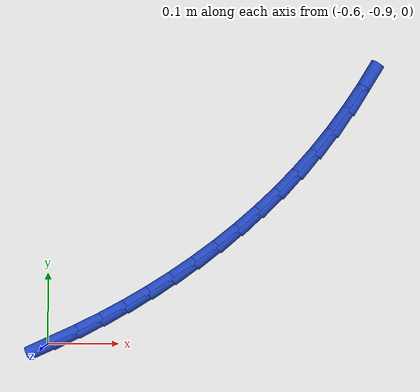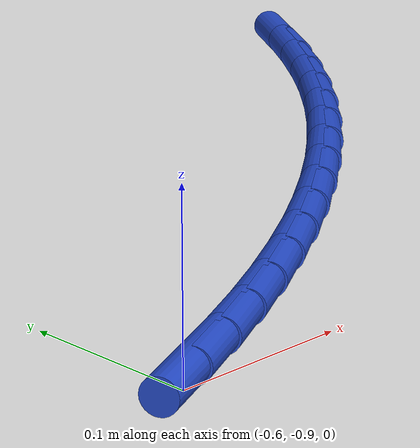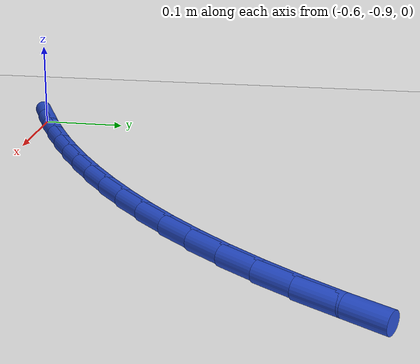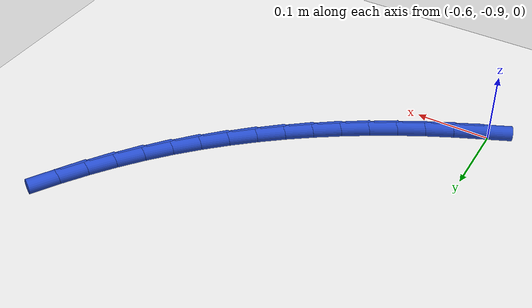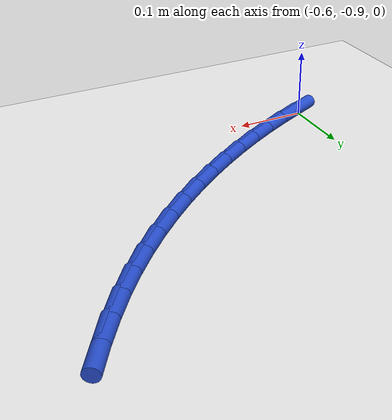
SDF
<sdf version="1.6">
 <world name="default">
  <model name="ground_plane">
   <static>1</static>
   <link name="link">
    <collision name="collision">
     <geometry><plane><normal>0 0 1</normal><size>100 100</size></plane></geometry>
     <surface><friction><ode><mu>100</mu><mu2>50</mu2></ode></friction></surface>
    </collision>
    <visual name="visual">
     <cast_shadows>0</cast_shadows>
     <geometry><plane><normal>0 0 1</normal><size>100 100</size></plane></geometry>
     <material>
      <script><uri>file://media/materials/scripts/gazebo.material</uri><name>Gazebo/WhiteGlow</name></script>
     </material>
    </visual>
   </link>
  </model>
  <model name="line">
   <link name="link_150">
    <pose>-0.5914952265184393 -0.8967577187634599 0.01 0 1.57 0.4288684942451355</pose>
    <collision name="collision">
     <geometry><cylinder><radius>0.01</radius><length>0.08</length></cylinder></geometry>
    </collision>
    <visual name="visual">
     <material>
      <script><name>Gazebo/Blue</name><uri>file://media/materials/scripts/gazebo.material</uri></script>
     </material>
     <geometry><cylinder><radius>0.01</radius><length>0.08</length></cylinder></geometry>
    </visual>
   </link>
   <link name="link_151">
    <pose>-0.557234073786241 -0.8810917301310645 0.01 0 1.57 0.4611441816226867</pose>
    <collision name="collision">
     <geometry><cylinder><radius>0.01</radius><length>0.08</length></cylinder></geometry>
    </collision>
    <visual name="visual">
     <material>
      <script><name>Gazebo/Blue</name><uri>file://media/materials/scripts/gazebo.material</uri></script>
     </material>
     <geometry><cylinder><radius>0.01</radius><length>0.08</length></cylinder></geometry>
    </visual>
   </link>
   <link name="link_152">
    <pose>-0.5233209204410054 -0.8642411449046276 0.01 0 1.57 0.49413402091840103</pose>
    <collision name="collision">
     <geometry><cylinder><radius>0.01</radius><length>0.08</length></cylinder></geometry>
    </collision>
    <visual name="visual">
     <material>
      <script><name>Gazebo/Blue</name><uri>file://media/materials/scripts/gazebo.material</uri></script>
     </material>
     <geometry><cylinder><radius>0.01</radius><length>0.08</length></cylinder></geometry>
    </visual>
   </link>
   <link name="link_153">
    <pose>-0.489851456651081 -0.8462108075921084 0.01 0 1.57 0.5279810407179869</pose>
    <collision name="collision">
     <geometry><cylinder><radius>0.01</radius><length>0.08</length></cylinder></geometry>
    </collision>
    <visual name="visual">
     <material>
      <script><name>Gazebo/Blue</name><uri>file://media/materials/scripts/gazebo.material</uri></script>
     </material>
     <geometry><cylinder><radius>0.01</radius><length>0.08</length></cylinder></geometry>
    </visual>
   </link>
   <link name="link_154">
    <pose>-0.45692153594371276 -0.8270058095265866 0.01 0 1.57 0.5628297081690211</pose>
    <collision name="collision">
     <geometry><cylinder><radius>0.01</radius><length>0.08</length></cylinder></geometry>
    </collision>
    <visual name="visual">
     <material>
      <script><name>Gazebo/Blue</name><uri>file://media/materials/scripts/gazebo.material</uri></script>
     </material>
     <geometry><cylinder><radius>0.01</radius><length>0.08</length></cylinder></geometry>
    </visual>
   </link>
   <link name="link_155">
    <pose>-0.42462701184614815 -0.8066312420411432 0.01 0 1.57 0.5988217457042266</pose>
    <collision name="collision">
     <geometry><cylinder><radius>0.01</radius><length>0.08</length></cylinder></geometry>
    </collision>
    <visual name="visual">
     <material>
      <script><name>Gazebo/Blue</name><uri>file://media/materials/scripts/gazebo.material</uri></script>
     </material>
     <geometry><cylinder><radius>0.01</radius><length>0.08</length></cylinder></geometry>
    </visual>
   </link>
   <link name="link_156">
    <pose>-0.3930637378856324 -0.7850921964688586 0.01 0 1.57 0.6360955608301228</pose>
    <collision name="collision">
     <geometry><cylinder><radius>0.01</radius><length>0.08</length></cylinder></geometry>
    </collision>
    <visual name="visual">
     <material>
      <script><name>Gazebo/Blue</name><uri>file://media/materials/scripts/gazebo.material</uri></script>
     </material>
     <geometry><cylinder><radius>0.01</radius><length>0.08</length></cylinder></geometry>
    </visual>
   </link>
   <link name="link_157">
    <pose>-0.3623275675894113 -0.7623937641428126 0.01 0 1.57 0.6747850621855289</pose>
    <collision name="collision">
     <geometry><cylinder><radius>0.01</radius><length>0.08</length></cylinder></geometry>
    </collision>
    <visual name="visual">
     <material>
      <script><name>Gazebo/Blue</name><uri>file://media/materials/scripts/gazebo.material</uri></script>
     </material>
     <geometry><cylinder><radius>0.01</radius><length>0.08</length></cylinder></geometry>
    </visual>
   </link>
   <link name="link_158">
    <pose>-0.3325143544847307 -0.7385410363960851 0.01 0 1.57 0.715017780324634</pose>
    <collision name="collision">
     <geometry><cylinder><radius>0.01</radius><length>0.08</length></cylinder></geometry>
    </collision>
    <visual name="visual">
     <material>
      <script><name>Gazebo/Blue</name><uri>file://media/materials/scripts/gazebo.material</uri></script>
     </material>
     <geometry><cylinder><radius>0.01</radius><length>0.08</length></cylinder></geometry>
    </visual>
   </link>
   <link name="link_159">
    <pose>-0.30371995209883595 -0.7135391045617568 0.01 0 1.57 0.7569122108937019</pose>
    <collision name="collision">
     <geometry><cylinder><radius>0.01</radius><length>0.08</length></cylinder></geometry>
    </collision>
    <visual name="visual">
     <material>
      <script><name>Gazebo/Blue</name><uri>file://media/materials/scripts/gazebo.material</uri></script>
     </material>
     <geometry><cylinder><radius>0.01</radius><length>0.08</length></cylinder></geometry>
    </visual>
   </link>
   <link name="link_160">
    <pose>-0.27604021395897393 -0.6873930599729082 0.01 0 1.57 0.8005743114550423</pose>
    <collision name="collision">
     <geometry><cylinder><radius>0.01</radius><length>0.08</length></cylinder></geometry>
    </collision>
    <visual name="visual">
     <material>
      <script><name>Gazebo/Blue</name><uri>file://media/materials/scripts/gazebo.material</uri></script>
     </material>
     <geometry><cylinder><radius>0.01</radius><length>0.08</length></cylinder></geometry>
    </visual>
   </link>
   <link name="link_161">
    <pose>-0.24957099359239007 -0.6601079939626193 0.01 0 1.57 0.846061610735195</pose>
    <collision name="collision">
     <geometry><cylinder><radius>0.01</radius><length>0.08</length></cylinder></geometry>
    </collision>
    <visual name="visual">
     <material>
      <script><name>Gazebo/Blue</name><uri>file://media/materials/scripts/gazebo.material</uri></script>
     </material>
     <geometry><cylinder><radius>0.01</radius><length>0.08</length></cylinder></geometry>
    </visual>
   </link>
   <link name="link_162">
    <pose>-0.22440712301026502 -0.6316896482283683 0.01 0 1.57 0.8920964146522106</pose>
    <collision name="collision">
     <geometry><cylinder><radius>0.01</radius><length>0.08</length></cylinder></geometry>
    </collision>
    <visual name="visual">
     <material>
      <script><name>Gazebo/Blue</name><uri>file://media/materials/scripts/gazebo.material</uri></script>
     </material>
     <geometry><cylinder><radius>0.01</radius><length>0.08</length></cylinder></geometry>
    </visual>
   </link>
   <link name="link_163">
    <pose>-0.20060018183539585 -0.6021713017863936 0.01 0 1.57 0.9368789840097427</pose>
    <collision name="collision">
     <geometry><cylinder><radius>0.01</radius><length>0.08</length></cylinder></geometry>
    </collision>
    <visual name="visual">
     <material>
      <script><name>Gazebo/Blue</name><uri>file://media/materials/scripts/gazebo.material</uri></script>
     </material>
     <geometry><cylinder><radius>0.01</radius><length>0.08</length></cylinder></geometry>
    </visual>
   </link>
   <link name="link_164">
    <pose>-0.17814342441257877 -0.5716233673658293 0.01 0 1.57 0.9802829245117517</pose>
    <collision name="collision">
     <geometry><cylinder><radius>0.01</radius><length>0.08</length></cylinder></geometry>
    </collision>
    <visual name="visual">
     <material>
      <script><name>Gazebo/Blue</name><uri>file://media/materials/scripts/gazebo.material</uri></script>
     </material>
     <geometry><cylinder><radius>0.01</radius><length>0.08</length></cylinder></geometry>
    </visual>
   </link>
   <link name="link_165">
    <pose>-0.15702598426464665 -0.540118881282439 0.01 0 1.57 1.022329615112552</pose>
    <collision name="collision">
     <geometry><cylinder><radius>0.01</radius><length>0.08</length></cylinder></geometry>
    </collision>
    <visual name="visual">
     <material>
      <script><name>Gazebo/Blue</name><uri>file://media/materials/scripts/gazebo.material</uri></script>
     </material>
     <geometry><cylinder><radius>0.01</radius><length>0.08</length></cylinder></geometry>
    </visual>
   </link>
  </model>
 </world>
</sdf>
